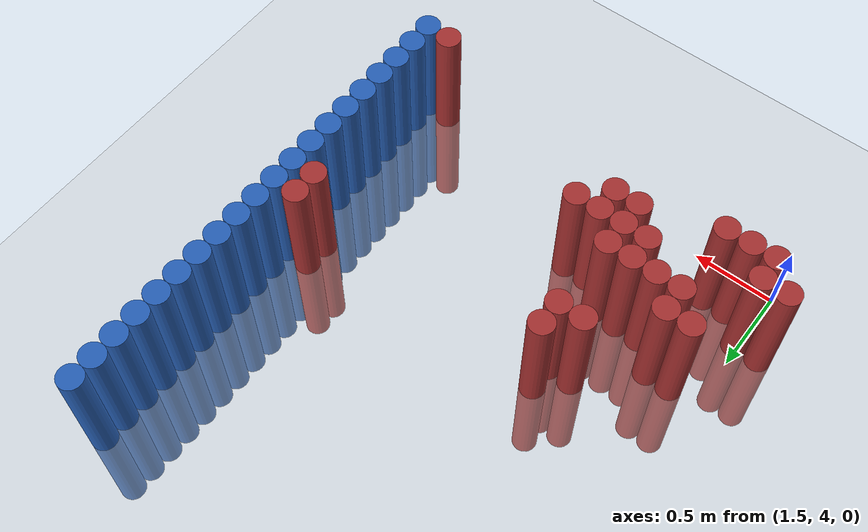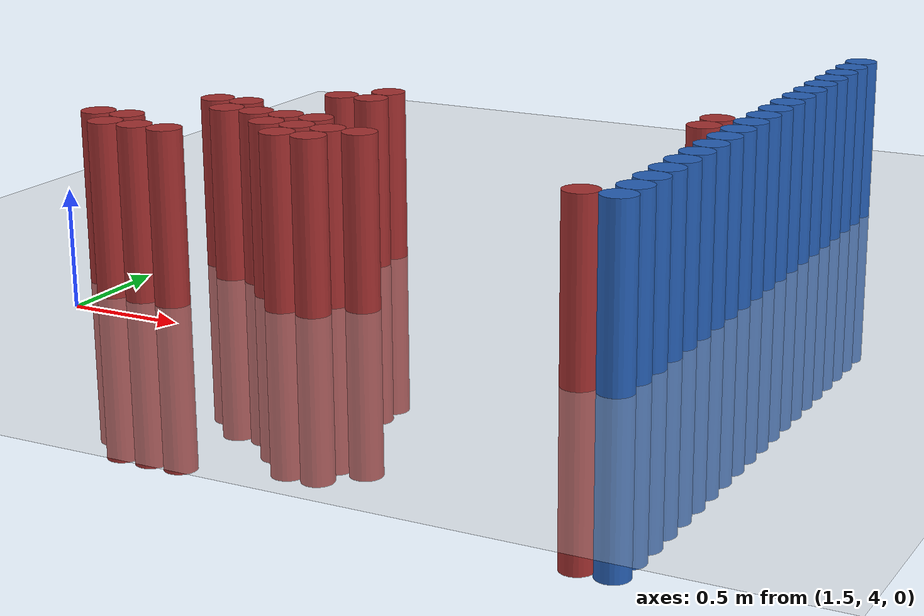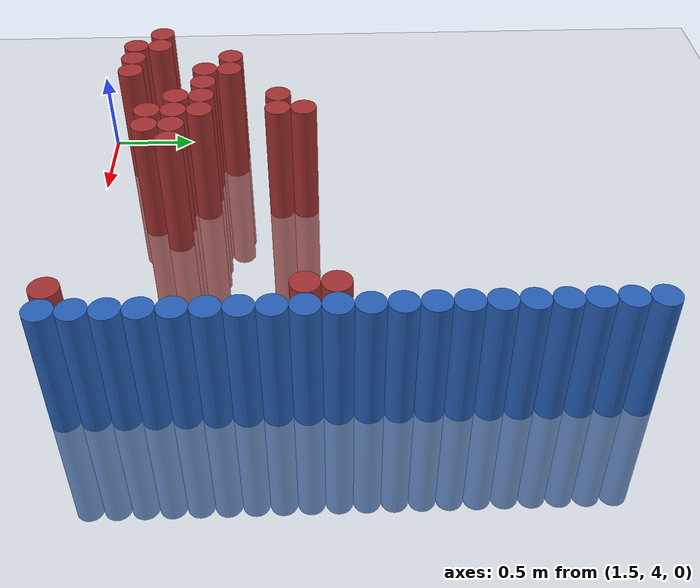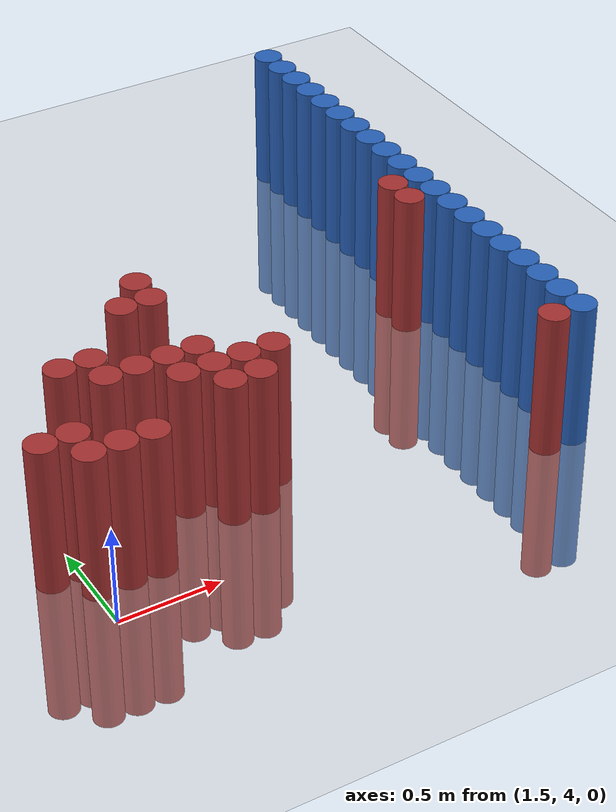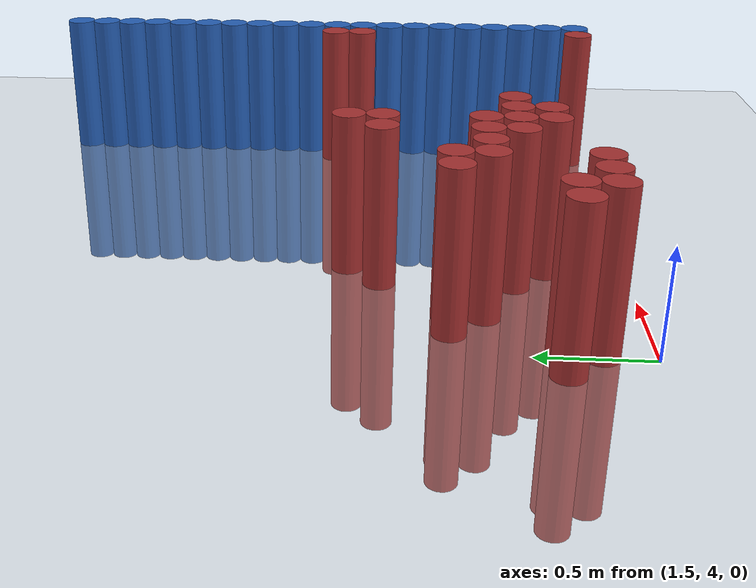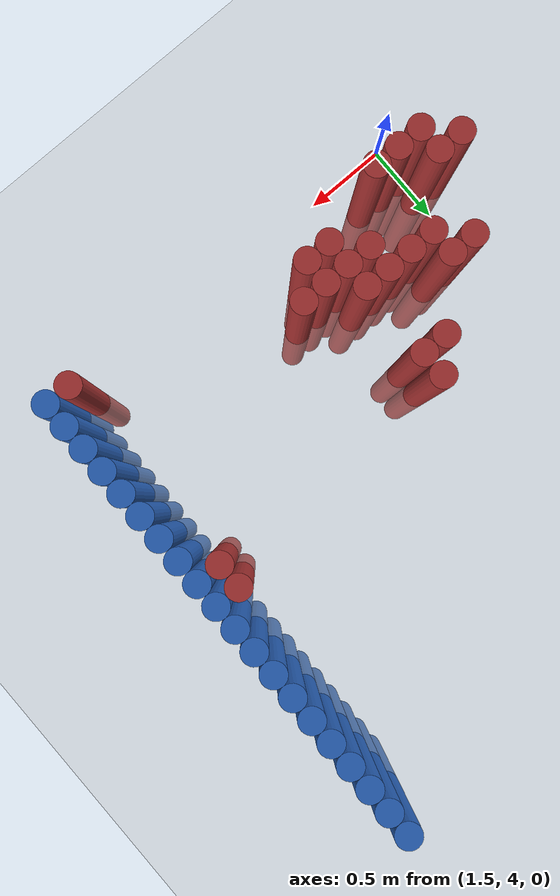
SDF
<sdf version="1.6">
 <world name="default">
  <model name="ground_plane">
   <static>1</static>
   <link name="link">
    <collision name="collision">
     <geometry><plane><normal>0 0 1</normal><size>100 100</size></plane></geometry>
     <surface><friction><ode><mu>100</mu><mu2>50</mu2></ode></friction></surface>
    </collision>
    <visual name="visual">
     <cast_shadows>0</cast_shadows>
     <geometry><plane><normal>0 0 1</normal><size>100 100</size></plane></geometry>
     <material>
      <script><uri>file://media/materials/scripts/gazebo.material</uri><name>Gazebo/Grey</name></script>
     </material>
    </visual>
   </link>
  </model>
  <model name="unit_cylinder_168">
   <static>1</static>
   <pose>3.925000 4.075000 0.000000 0.000000 0.000000 0.000000</pose>
   <link name="link">
    <inertial>
     <mass>1</mass>
     <inertia><ixx>0.145833</ixx><ixy>0</ixy><ixz>0</ixz><iyy>0.145833</iyy><iyz>0</iyz><izz>0.125</izz></inertia>
    </inertial>
    <collision name="collision">
     <geometry><cylinder><radius>0.075000</radius><length>1.5</length></cylinder></geometry>
    </collision>
    <visual name="visual">
     <geometry><cylinder><radius>0.075000</radius><length>1.5</length></cylinder></geometry>
     <material>
      <ambient>0.152000 0.379000 0.720000 1</ambient>
      <diffuse>0.152000 0.379000 0.720000 1</diffuse>
     </material>
     <material>
      <script><name>Gazebo/Grey</name><uri>file://media/materials/scripts/gazebo.material</uri></script>
     </material>
    </visual>
   </link>
  </model>
  <model name="unit_cylinder_170">
   <static>1</static>
   <pose>3.925000 4.225000 0.000000 0.000000 0.000000 0.000000</pose>
   <link name="link">
    <inertial>
     <mass>1</mass>
     <inertia><ixx>0.145833</ixx><ixy>0</ixy><ixz>0</ixz><iyy>0.145833</iyy><iyz>0</iyz><izz>0.125</izz></inertia>
    </inertial>
    <collision name="collision">
     <geometry><cylinder><radius>0.075000</radius><length>1.5</length></cylinder></geometry>
    </collision>
    <visual name="visual">
     <geometry><cylinder><radius>0.075000</radius><length>1.5</length></cylinder></geometry>
     <material>
      <ambient>0.152000 0.379000 0.720000 1</ambient>
      <diffuse>0.152000 0.379000 0.720000 1</diffuse>
     </material>
     <material>
      <script><name>Gazebo/Grey</name><uri>file://media/materials/scripts/gazebo.material</uri></script>
     </material>
    </visual>
   </link>
  </model>
  <model name="unit_cylinder_172">
   <static>1</static>
   <pose>3.925000 4.375000 0.000000 0.000000 0.000000 0.000000</pose>
   <link name="link">
    <inertial>
     <mass>1</mass>
     <inertia><ixx>0.145833</ixx><ixy>0</ixy><ixz>0</ixz><iyy>0.145833</iyy><iyz>0</iyz><izz>0.125</izz></inertia>
    </inertial>
    <collision name="collision">
     <geometry><cylinder><radius>0.075000</radius><length>1.5</length></cylinder></geometry>
    </collision>
    <visual name="visual">
     <geometry><cylinder><radius>0.075000</radius><length>1.5</length></cylinder></geometry>
     <material>
      <ambient>0.152000 0.379000 0.720000 1</ambient>
      <diffuse>0.152000 0.379000 0.720000 1</diffuse>
     </material>
     <material>
      <script><name>Gazebo/Grey</name><uri>file://media/materials/scripts/gazebo.material</uri></script>
     </material>
    </visual>
   </link>
  </model>
  <model name="unit_cylinder_174">
   <static>1</static>
   <pose>3.925000 4.525000 0.000000 0.000000 0.000000 0.000000</pose>
   <link name="link">
    <inertial>
     <mass>1</mass>
     <inertia><ixx>0.145833</ixx><ixy>0</ixy><ixz>0</ixz><iyy>0.145833</iyy><iyz>0</iyz><izz>0.125</izz></inertia>
    </inertial>
    <collision name="collision">
     <geometry><cylinder><radius>0.075000</radius><length>1.5</length></cylinder></geometry>
    </collision>
    <visual name="visual">
     <geometry><cylinder><radius>0.075000</radius><length>1.5</length></cylinder></geometry>
     <material>
      <ambient>0.152000 0.379000 0.720000 1</ambient>
      <diffuse>0.152000 0.379000 0.720000 1</diffuse>
     </material>
     <material>
      <script><name>Gazebo/Grey</name><uri>file://media/materials/scripts/gazebo.material</uri></script>
     </material>
    </visual>
   </link>
  </model>
  <model name="unit_cylinder_176">
   <static>1</static>
   <pose>3.925000 4.675000 0.000000 0.000000 0.000000 0.000000</pose>
   <link name="link">
    <inertial>
     <mass>1</mass>
     <inertia><ixx>0.145833</ixx><ixy>0</ixy><ixz>0</ixz><iyy>0.145833</iyy><iyz>0</iyz><izz>0.125</izz></inertia>
    </inertial>
    <collision name="collision">
     <geometry><cylinder><radius>0.075000</radius><length>1.5</length></cylinder></geometry>
    </collision>
    <visual name="visual">
     <geometry><cylinder><radius>0.075000</radius><length>1.5</length></cylinder></geometry>
     <material>
      <ambient>0.152000 0.379000 0.720000 1</ambient>
      <diffuse>0.152000 0.379000 0.720000 1</diffuse>
     </material>
     <material>
      <script><name>Gazebo/Grey</name><uri>file://media/materials/scripts/gazebo.material</uri></script>
     </material>
    </visual>
   </link>
  </model>
  <model name="unit_cylinder_178">
   <static>1</static>
   <pose>3.925000 4.825000 0.000000 0.000000 0.000000 0.000000</pose>
   <link name="link">
    <inertial>
     <mass>1</mass>
     <inertia><ixx>0.145833</ixx><ixy>0</ixy><ixz>0</ixz><iyy>0.145833</iyy><iyz>0</iyz><izz>0.125</izz></inertia>
    </inertial>
    <collision name="collision">
     <geometry><cylinder><radius>0.075000</radius><length>1.5</length></cylinder></geometry>
    </collision>
    <visual name="visual">
     <geometry><cylinder><radius>0.075000</radius><length>1.5</length></cylinder></geometry>
     <material>
      <ambient>0.152000 0.379000 0.720000 1</ambient>
      <diffuse>0.152000 0.379000 0.720000 1</diffuse>
     </material>
     <material>
      <script><name>Gazebo/Grey</name><uri>file://media/materials/scripts/gazebo.material</uri></script>
     </material>
    </visual>
   </link>
  </model>
  <model name="unit_cylinder_180">
   <static>1</static>
   <pose>3.925000 4.975000 0.000000 0.000000 0.000000 0.000000</pose>
   <link name="link">
    <inertial>
     <mass>1</mass>
     <inertia><ixx>0.145833</ixx><ixy>0</ixy><ixz>0</ixz><iyy>0.145833</iyy><iyz>0</iyz><izz>0.125</izz></inertia>
    </inertial>
    <collision name="collision">
     <geometry><cylinder><radius>0.075000</radius><length>1.5</length></cylinder></geometry>
    </collision>
    <visual name="visual">
     <geometry><cylinder><radius>0.075000</radius><length>1.5</length></cylinder></geometry>
     <material>
      <ambient>0.152000 0.379000 0.720000 1</ambient>
      <diffuse>0.152000 0.379000 0.720000 1</diffuse>
     </material>
     <material>
      <script><name>Gazebo/Grey</name><uri>file://media/materials/scripts/gazebo.material</uri></script>
     </material>
    </visual>
   </link>
  </model>
  <model name="unit_cylinder_182">
   <static>1</static>
   <pose>3.925000 5.125000 0.000000 0.000000 0.000000 0.000000</pose>
   <link name="link">
    <inertial>
     <mass>1</mass>
     <inertia><ixx>0.145833</ixx><ixy>0</ixy><ixz>0</ixz><iyy>0.145833</iyy><iyz>0</iyz><izz>0.125</izz></inertia>
    </inertial>
    <collision name="collision">
     <geometry><cylinder><radius>0.075000</radius><length>1.5</length></cylinder></geometry>
    </collision>
    <visual name="visual">
     <geometry><cylinder><radius>0.075000</radius><length>1.5</length></cylinder></geometry>
     <material>
      <ambient>0.152000 0.379000 0.720000 1</ambient>
      <diffuse>0.152000 0.379000 0.720000 1</diffuse>
     </material>
     <material>
      <script><name>Gazebo/Grey</name><uri>file://media/materials/scripts/gazebo.material</uri></script>
     </material>
    </visual>
   </link>
  </model>
  <model name="unit_cylinder_184">
   <static>1</static>
   <pose>3.925000 5.275000 0.000000 0.000000 0.000000 0.000000</pose>
   <link name="link">
    <inertial>
     <mass>1</mass>
     <inertia><ixx>0.145833</ixx><ixy>0</ixy><ixz>0</ixz><iyy>0.145833</iyy><iyz>0</iyz><izz>0.125</izz></inertia>
    </inertial>
    <collision name="collision">
     <geometry><cylinder><radius>0.075000</radius><length>1.5</length></cylinder></geometry>
    </collision>
    <visual name="visual">
     <geometry><cylinder><radius>0.075000</radius><length>1.5</length></cylinder></geometry>
     <material>
      <ambient>0.152000 0.379000 0.720000 1</ambient>
      <diffuse>0.152000 0.379000 0.720000 1</diffuse>
     </material>
     <material>
      <script><name>Gazebo/Grey</name><uri>file://media/materials/scripts/gazebo.material</uri></script>
     </material>
    </visual>
   </link>
  </model>
  <model name="unit_cylinder_186">
   <static>1</static>
   <pose>3.925000 5.425000 0.000000 0.000000 0.000000 0.000000</pose>
   <link name="link">
    <inertial>
     <mass>1</mass>
     <inertia><ixx>0.145833</ixx><ixy>0</ixy><ixz>0</ixz><iyy>0.145833</iyy><iyz>0</iyz><izz>0.125</izz></inertia>
    </inertial>
    <collision name="collision">
     <geometry><cylinder><radius>0.075000</radius><length>1.5</length></cylinder></geometry>
    </collision>
    <visual name="visual">
     <geometry><cylinder><radius>0.075000</radius><length>1.5</length></cylinder></geometry>
     <material>
      <ambient>0.152000 0.379000 0.720000 1</ambient>
      <diffuse>0.152000 0.379000 0.720000 1</diffuse>
     </material>
     <material>
      <script><name>Gazebo/Grey</name><uri>file://media/materials/scripts/gazebo.material</uri></script>
     </material>
    </visual>
   </link>
  </model>
  <model name="unit_cylinder_188">
   <static>1</static>
   <pose>3.925000 5.575000 0.000000 0.000000 0.000000 0.000000</pose>
   <link name="link">
    <inertial>
     <mass>1</mass>
     <inertia><ixx>0.145833</ixx><ixy>0</ixy><ixz>0</ixz><iyy>0.145833</iyy><iyz>0</iyz><izz>0.125</izz></inertia>
    </inertial>
    <collision name="collision">
     <geometry><cylinder><radius>0.075000</radius><length>1.5</length></cylinder></geometry>
    </collision>
    <visual name="visual">
     <geometry><cylinder><radius>0.075000</radius><length>1.5</length></cylinder></geometry>
     <material>
      <ambient>0.152000 0.379000 0.720000 1</ambient>
      <diffuse>0.152000 0.379000 0.720000 1</diffuse>
     </material>
     <material>
      <script><name>Gazebo/Grey</name><uri>file://media/materials/scripts/gazebo.material</uri></script>
     </material>
    </visual>
   </link>
  </model>
  <model name="unit_cylinder_190">
   <static>1</static>
   <pose>3.925000 5.725000 0.000000 0.000000 0.000000 0.000000</pose>
   <link name="link">
    <inertial>
     <mass>1</mass>
     <inertia><ixx>0.145833</ixx><ixy>0</ixy><ixz>0</ixz><iyy>0.145833</iyy><iyz>0</iyz><izz>0.125</izz></inertia>
    </inertial>
    <collision name="collision">
     <geometry><cylinder><radius>0.075000</radius><length>1.5</length></cylinder></geometry>
    </collision>
    <visual name="visual">
     <geometry><cylinder><radius>0.075000</radius><length>1.5</length></cylinder></geometry>
     <material>
      <ambient>0.152000 0.379000 0.720000 1</ambient>
      <diffuse>0.152000 0.379000 0.720000 1</diffuse>
     </material>
     <material>
      <script><name>Gazebo/Grey</name><uri>file://media/materials/scripts/gazebo.material</uri></script>
     </material>
    </visual>
   </link>
  </model>
  <model name="unit_cylinder_192">
   <static>1</static>
   <pose>3.925000 5.875000 0.000000 0.000000 0.000000 0.000000</pose>
   <link name="link">
    <inertial>
     <mass>1</mass>
     <inertia><ixx>0.145833</ixx><ixy>0</ixy><ixz>0</ixz><iyy>0.145833</iyy><iyz>0</iyz><izz>0.125</izz></inertia>
    </inertial>
    <collision name="collision">
     <geometry><cylinder><radius>0.075000</radius><length>1.5</length></cylinder></geometry>
    </collision>
    <visual name="visual">
     <geometry><cylinder><radius>0.075000</radius><length>1.5</length></cylinder></geometry>
     <material>
      <ambient>0.152000 0.379000 0.720000 1</ambient>
      <diffuse>0.152000 0.379000 0.720000 1</diffuse>
     </material>
     <material>
      <script><name>Gazebo/Grey</name><uri>file://media/materials/scripts/gazebo.material</uri></script>
     </material>
    </visual>
   </link>
  </model>
  <model name="unit_cylinder_194">
   <static>1</static>
   <pose>3.925000 6.025000 0.000000 0.000000 0.000000 0.000000</pose>
   <link name="link">
    <inertial>
     <mass>1</mass>
     <inertia><ixx>0.145833</ixx><ixy>0</ixy><ixz>0</ixz><iyy>0.145833</iyy><iyz>0</iyz><izz>0.125</izz></inertia>
    </inertial>
    <collision name="collision">
     <geometry><cylinder><radius>0.075000</radius><length>1.5</length></cylinder></geometry>
    </collision>
    <visual name="visual">
     <geometry><cylinder><radius>0.075000</radius><length>1.5</length></cylinder></geometry>
     <material>
      <ambient>0.152000 0.379000 0.720000 1</ambient>
      <diffuse>0.152000 0.379000 0.720000 1</diffuse>
     </material>
     <material>
      <script><name>Gazebo/Grey</name><uri>file://media/materials/scripts/gazebo.material</uri></script>
     </material>
    </visual>
   </link>
  </model>
  <model name="unit_cylinder_196">
   <static>1</static>
   <pose>3.925000 6.175000 0.000000 0.000000 0.000000 0.000000</pose>
   <link name="link">
    <inertial>
     <mass>1</mass>
     <inertia><ixx>0.145833</ixx><ixy>0</ixy><ixz>0</ixz><iyy>0.145833</iyy><iyz>0</iyz><izz>0.125</izz></inertia>
    </inertial>
    <collision name="collision">
     <geometry><cylinder><radius>0.075000</radius><length>1.5</length></cylinder></geometry>
    </collision>
    <visual name="visual">
     <geometry><cylinder><radius>0.075000</radius><length>1.5</length></cylinder></geometry>
     <material>
      <ambient>0.152000 0.379000 0.720000 1</ambient>
      <diffuse>0.152000 0.379000 0.720000 1</diffuse>
     </material>
     <material>
      <script><name>Gazebo/Grey</name><uri>file://media/materials/scripts/gazebo.material</uri></script>
     </material>
    </visual>
   </link>
  </model>
  <model name="unit_cylinder_198">
   <static>1</static>
   <pose>3.925000 6.325000 0.000000 0.000000 0.000000 0.000000</pose>
   <link name="link">
    <inertial>
     <mass>1</mass>
     <inertia><ixx>0.145833</ixx><ixy>0</ixy><ixz>0</ixz><iyy>0.145833</iyy><iyz>0</iyz><izz>0.125</izz></inertia>
    </inertial>
    <collision name="collision">
     <geometry><cylinder><radius>0.075000</radius><length>1.5</length></cylinder></geometry>
    </collision>
    <visual name="visual">
     <geometry><cylinder><radius>0.075000</radius><length>1.5</length></cylinder></geometry>
     <material>
      <ambient>0.152000 0.379000 0.720000 1</ambient>
      <diffuse>0.152000 0.379000 0.720000 1</diffuse>
     </material>
     <material>
      <script><name>Gazebo/Grey</name><uri>file://media/materials/scripts/gazebo.material</uri></script>
     </material>
    </visual>
   </link>
  </model>
  <model name="unit_cylinder_200">
   <static>1</static>
   <pose>3.925000 6.475000 0.000000 0.000000 0.000000 0.000000</pose>
   <link name="link">
    <inertial>
     <mass>1</mass>
     <inertia><ixx>0.145833</ixx><ixy>0</ixy><ixz>0</ixz><iyy>0.145833</iyy><iyz>0</iyz><izz>0.125</izz></inertia>
    </inertial>
    <collision name="collision">
     <geometry><cylinder><radius>0.075000</radius><length>1.5</length></cylinder></geometry>
    </collision>
    <visual name="visual">
     <geometry><cylinder><radius>0.075000</radius><length>1.5</length></cylinder></geometry>
     <material>
      <ambient>0.152000 0.379000 0.720000 1</ambient>
      <diffuse>0.152000 0.379000 0.720000 1</diffuse>
     </material>
     <material>
      <script><name>Gazebo/Grey</name><uri>file://media/materials/scripts/gazebo.material</uri></script>
     </material>
    </visual>
   </link>
  </model>
  <model name="unit_cylinder_202">
   <static>1</static>
   <pose>3.925000 6.625000 0.000000 0.000000 0.000000 0.000000</pose>
   <link name="link">
    <inertial>
     <mass>1</mass>
     <inertia><ixx>0.145833</ixx><ixy>0</ixy><ixz>0</ixz><iyy>0.145833</iyy><iyz>0</iyz><izz>0.125</izz></inertia>
    </inertial>
    <collision name="collision">
     <geometry><cylinder><radius>0.075000</radius><length>1.5</length></cylinder></geometry>
    </collision>
    <visual name="visual">
     <geometry><cylinder><radius>0.075000</radius><length>1.5</length></cylinder></geometry>
     <material>
      <ambient>0.152000 0.379000 0.720000 1</ambient>
      <diffuse>0.152000 0.379000 0.720000 1</diffuse>
     </material>
     <material>
      <script><name>Gazebo/Grey</name><uri>file://media/materials/scripts/gazebo.material</uri></script>
     </material>
    </visual>
   </link>
  </model>
  <model name="unit_cylinder_204">
   <static>1</static>
   <pose>3.925000 6.775000 0.000000 0.000000 0.000000 0.000000</pose>
   <link name="link">
    <inertial>
     <mass>1</mass>
     <inertia><ixx>0.145833</ixx><ixy>0</ixy><ixz>0</ixz><iyy>0.145833</iyy><iyz>0</iyz><izz>0.125</izz></inertia>
    </inertial>
    <collision name="collision">
     <geometry><cylinder><radius>0.075000</radius><length>1.5</length></cylinder></geometry>
    </collision>
    <visual name="visual">
     <geometry><cylinder><radius>0.075000</radius><length>1.5</length></cylinder></geometry>
     <material>
      <ambient>0.152000 0.379000 0.720000 1</ambient>
      <diffuse>0.152000 0.379000 0.720000 1</diffuse>
     </material>
     <material>
      <script><name>Gazebo/Grey</name><uri>file://media/materials/scripts/gazebo.material</uri></script>
     </material>
    </visual>
   </link>
  </model>
  <model name="unit_cylinder_206">
   <static>1</static>
   <pose>3.925000 6.925000 0.000000 0.000000 0.000000 0.000000</pose>
   <link name="link">
    <inertial>
     <mass>1</mass>
     <inertia><ixx>0.145833</ixx><ixy>0</ixy><ixz>0</ixz><iyy>0.145833</iyy><iyz>0</iyz><izz>0.125</izz></inertia>
    </inertial>
    <collision name="collision">
     <geometry><cylinder><radius>0.075000</radius><length>1.5</length></cylinder></geometry>
    </collision>
    <visual name="visual">
     <geometry><cylinder><radius>0.075000</radius><length>1.5</length></cylinder></geometry>
     <material>
      <ambient>0.152000 0.379000 0.720000 1</ambient>
      <diffuse>0.152000 0.379000 0.720000 1</diffuse>
     </material>
     <material>
      <script><name>Gazebo/Grey</name><uri>file://media/materials/scripts/gazebo.material</uri></script>
     </material>
    </visual>
   </link>
  </model>
  <model name="unit_cylinder_409">
   <static>1</static>
   <pose>1.375000 4.375000 0.000000 0.000000 0.000000 0.000000</pose>
   <link name="link">
    <inertial>
     <mass>1</mass>
     <inertia><ixx>0.145833</ixx><ixy>0</ixy><ixz>0</ixz><iyy>0.145833</iyy><iyz>0</iyz><izz>0.125</izz></inertia>
    </inertial>
    <collision name="collision">
     <geometry><cylinder><radius>0.075000</radius><length>1.5</length></cylinder></geometry>
    </collision>
    <visual name="visual">
     <geometry><cylinder><radius>0.075000</radius><length>1.5</length></cylinder></geometry>
     <material>
      <ambient>0.648000 0.192000 0.192000 1</ambient>
      <diffuse>0.648000 0.192000 0.192000 1</diffuse>
     </material>
     <material>
      <script><name>Gazebo/Grey</name><uri>file://media/materials/scripts/gazebo.material</uri></script>
     </material>
    </visual>
   </link>
  </model>
  <model name="unit_cylinder_415">
   <static>1</static>
   <pose>1.525000 4.225000 0.000000 0.000000 0.000000 0.000000</pose>
   <link name="link">
    <inertial>
     <mass>1</mass>
     <inertia><ixx>0.145833</ixx><ixy>0</ixy><ixz>0</ixz><iyy>0.145833</iyy><iyz>0</iyz><izz>0.125</izz></inertia>
    </inertial>
    <collision name="collision">
     <geometry><cylinder><radius>0.075000</radius><length>1.5</length></cylinder></geometry>
    </collision>
    <visual name="visual">
     <geometry><cylinder><radius>0.075000</radius><length>1.5</length></cylinder></geometry>
     <material>
      <ambient>0.648000 0.192000 0.192000 1</ambient>
      <diffuse>0.648000 0.192000 0.192000 1</diffuse>
     </material>
     <material>
      <script><name>Gazebo/Grey</name><uri>file://media/materials/scripts/gazebo.material</uri></script>
     </material>
    </visual>
   </link>
  </model>
  <model name="unit_cylinder_416">
   <static>1</static>
   <pose>1.525000 4.375000 0.000000 0.000000 0.000000 0.000000</pose>
   <link name="link">
    <inertial>
     <mass>1</mass>
     <inertia><ixx>0.145833</ixx><ixy>0</ixy><ixz>0</ixz><iyy>0.145833</iyy><iyz>0</iyz><izz>0.125</izz></inertia>
    </inertial>
    <collision name="collision">
     <geometry><cylinder><radius>0.075000</radius><length>1.5</length></cylinder></geometry>
    </collision>
    <visual name="visual">
     <geometry><cylinder><radius>0.075000</radius><length>1.5</length></cylinder></geometry>
     <material>
      <ambient>0.648000 0.192000 0.192000 1</ambient>
      <diffuse>0.648000 0.192000 0.192000 1</diffuse>
     </material>
     <material>
      <script><name>Gazebo/Grey</name><uri>file://media/materials/scripts/gazebo.material</uri></script>
     </material>
    </visual>
   </link>
  </model>
  <model name="unit_cylinder_428">
   <static>1</static>
   <pose>1.675000 4.225000 0.000000 0.000000 0.000000 0.000000</pose>
   <link name="link">
    <inertial>
     <mass>1</mass>
     <inertia><ixx>0.145833</ixx><ixy>0</ixy><ixz>0</ixz><iyy>0.145833</iyy><iyz>0</iyz><izz>0.125</izz></inertia>
    </inertial>
    <collision name="collision">
     <geometry><cylinder><radius>0.075000</radius><length>1.5</length></cylinder></geometry>
    </collision>
    <visual name="visual">
     <geometry><cylinder><radius>0.075000</radius><length>1.5</length></cylinder></geometry>
     <material>
      <ambient>0.648000 0.192000 0.192000 1</ambient>
      <diffuse>0.648000 0.192000 0.192000 1</diffuse>
     </material>
     <material>
      <script><name>Gazebo/Grey</name><uri>file://media/materials/scripts/gazebo.material</uri></script>
     </material>
    </visual>
   </link>
  </model>
  <model name="unit_cylinder_429">
   <static>1</static>
   <pose>1.675000 4.825000 0.000000 0.000000 0.000000 0.000000</pose>
   <link name="link">
    <inertial>
     <mass>1</mass>
     <inertia><ixx>0.145833</ixx><ixy>0</ixy><ixz>0</ixz><iyy>0.145833</iyy><iyz>0</iyz><izz>0.125</izz></inertia>
    </inertial>
    <collision name="collision">
     <geometry><cylinder><radius>0.075000</radius><length>1.5</length></cylinder></geometry>
    </collision>
    <visual name="visual">
     <geometry><cylinder><radius>0.075000</radius><length>1.5</length></cylinder></geometry>
     <material>
      <ambient>0.648000 0.192000 0.192000 1</ambient>
      <diffuse>0.648000 0.192000 0.192000 1</diffuse>
     </material>
     <material>
      <script><name>Gazebo/Grey</name><uri>file://media/materials/scripts/gazebo.material</uri></script>
     </material>
    </visual>
   </link>
  </model>
  <model name="unit_cylinder_442">
   <static>1</static>
   <pose>1.825000 4.225000 0.000000 0.000000 0.000000 0.000000</pose>
   <link name="link">
    <inertial>
     <mass>1</mass>
     <inertia><ixx>0.145833</ixx><ixy>0</ixy><ixz>0</ixz><iyy>0.145833</iyy><iyz>0</iyz><izz>0.125</izz></inertia>
    </inertial>
    <collision name="collision">
     <geometry><cylinder><radius>0.075000</radius><length>1.5</length></cylinder></geometry>
    </collision>
    <visual name="visual">
     <geometry><cylinder><radius>0.075000</radius><length>1.5</length></cylinder></geometry>
     <material>
      <ambient>0.648000 0.192000 0.192000 1</ambient>
      <diffuse>0.648000 0.192000 0.192000 1</diffuse>
     </material>
     <material>
      <script><name>Gazebo/Grey</name><uri>file://media/materials/scripts/gazebo.material</uri></script>
     </material>
    </visual>
   </link>
  </model>
  <model name="unit_cylinder_443">
   <static>1</static>
   <pose>1.825000 4.675000 0.000000 0.000000 0.000000 0.000000</pose>
   <link name="link">
    <inertial>
     <mass>1</mass>
     <inertia><ixx>0.145833</ixx><ixy>0</ixy><ixz>0</ixz><iyy>0.145833</iyy><iyz>0</iyz><izz>0.125</izz></inertia>
    </inertial>
    <collision name="collision">
     <geometry><cylinder><radius>0.075000</radius><length>1.5</length></cylinder></geometry>
    </collision>
    <visual name="visual">
     <geometry><cylinder><radius>0.075000</radius><length>1.5</length></cylinder></geometry>
     <material>
      <ambient>0.648000 0.192000 0.192000 1</ambient>
      <diffuse>0.648000 0.192000 0.192000 1</diffuse>
     </material>
     <material>
      <script><name>Gazebo/Grey</name><uri>file://media/materials/scripts/gazebo.material</uri></script>
     </material>
    </visual>
   </link>
  </model>
  <model name="unit_cylinder_444">
   <static>1</static>
   <pose>1.825000 4.825000 0.000000 0.000000 0.000000 0.000000</pose>
   <link name="link">
    <inertial>
     <mass>1</mass>
     <inertia><ixx>0.145833</ixx><ixy>0</ixy><ixz>0</ixz><iyy>0.145833</iyy><iyz>0</iyz><izz>0.125</izz></inertia>
    </inertial>
    <collision name="collision">
     <geometry><cylinder><radius>0.075000</radius><length>1.5</length></cylinder></geometry>
    </collision>
    <visual name="visual">
     <geometry><cylinder><radius>0.075000</radius><length>1.5</length></cylinder></geometry>
     <material>
      <ambient>0.648000 0.192000 0.192000 1</ambient>
      <diffuse>0.648000 0.192000 0.192000 1</diffuse>
     </material>
     <material>
      <script><name>Gazebo/Grey</name><uri>file://media/materials/scripts/gazebo.material</uri></script>
     </material>
    </visual>
   </link>
  </model>
  <model name="unit_cylinder_450">
   <static>1</static>
   <pose>1.975000 4.675000 0.000000 0.000000 0.000000 0.000000</pose>
   <link name="link">
    <inertial>
     <mass>1</mass>
     <inertia><ixx>0.145833</ixx><ixy>0</ixy><ixz>0</ixz><iyy>0.145833</iyy><iyz>0</iyz><izz>0.125</izz></inertia>
    </inertial>
    <collision name="collision">
     <geometry><cylinder><radius>0.075000</radius><length>1.5</length></cylinder></geometry>
    </collision>
    <visual name="visual">
     <geometry><cylinder><radius>0.075000</radius><length>1.5</length></cylinder></geometry>
     <material>
      <ambient>0.648000 0.192000 0.192000 1</ambient>
      <diffuse>0.648000 0.192000 0.192000 1</diffuse>
     </material>
     <material>
      <script><name>Gazebo/Grey</name><uri>file://media/materials/scripts/gazebo.material</uri></script>
     </material>
    </visual>
   </link>
  </model>
  <model name="unit_cylinder_457">
   <static>1</static>
   <pose>2.125000 4.525000 0.000000 0.000000 0.000000 0.000000</pose>
   <link name="link">
    <inertial>
     <mass>1</mass>
     <inertia><ixx>0.145833</ixx><ixy>0</ixy><ixz>0</ixz><iyy>0.145833</iyy><iyz>0</iyz><izz>0.125</izz></inertia>
    </inertial>
    <collision name="collision">
     <geometry><cylinder><radius>0.075000</radius><length>1.5</length></cylinder></geometry>
    </collision>
    <visual name="visual">
     <geometry><cylinder><radius>0.075000</radius><length>1.5</length></cylinder></geometry>
     <material>
      <ambient>0.648000 0.192000 0.192000 1</ambient>
      <diffuse>0.648000 0.192000 0.192000 1</diffuse>
     </material>
     <material>
      <script><name>Gazebo/Grey</name><uri>file://media/materials/scripts/gazebo.material</uri></script>
     </material>
    </visual>
   </link>
  </model>
  <model name="unit_cylinder_458">
   <static>1</static>
   <pose>2.125000 4.675000 0.000000 0.000000 0.000000 0.000000</pose>
   <link name="link">
    <inertial>
     <mass>1</mass>
     <inertia><ixx>0.145833</ixx><ixy>0</ixy><ixz>0</ixz><iyy>0.145833</iyy><iyz>0</iyz><izz>0.125</izz></inertia>
    </inertial>
    <collision name="collision">
     <geometry><cylinder><radius>0.075000</radius><length>1.5</length></cylinder></geometry>
    </collision>
    <visual name="visual">
     <geometry><cylinder><radius>0.075000</radius><length>1.5</length></cylinder></geometry>
     <material>
      <ambient>0.648000 0.192000 0.192000 1</ambient>
      <diffuse>0.648000 0.192000 0.192000 1</diffuse>
     </material>
     <material>
      <script><name>Gazebo/Grey</name><uri>file://media/materials/scripts/gazebo.material</uri></script>
     </material>
    </visual>
   </link>
  </model>
  <model name="unit_cylinder_459">
   <static>1</static>
   <pose>2.125000 5.125000 0.000000 0.000000 0.000000 0.000000</pose>
   <link name="link">
    <inertial>
     <mass>1</mass>
     <inertia><ixx>0.145833</ixx><ixy>0</ixy><ixz>0</ixz><iyy>0.145833</iyy><iyz>0</iyz><izz>0.125</izz></inertia>
    </inertial>
    <collision name="collision">
     <geometry><cylinder><radius>0.075000</radius><length>1.5</length></cylinder></geometry>
    </collision>
    <visual name="visual">
     <geometry><cylinder><radius>0.075000</radius><length>1.5</length></cylinder></geometry>
     <material>
      <ambient>0.648000 0.192000 0.192000 1</ambient>
      <diffuse>0.648000 0.192000 0.192000 1</diffuse>
     </material>
     <material>
      <script><name>Gazebo/Grey</name><uri>file://media/materials/scripts/gazebo.material</uri></script>
     </material>
    </visual>
   </link>
  </model>
  <model name="unit_cylinder_465">
   <static>1</static>
   <pose>2.275000 4.375000 0.000000 0.000000 0.000000 0.000000</pose>
   <link name="link">
    <inertial>
     <mass>1</mass>
     <inertia><ixx>0.145833</ixx><ixy>0</ixy><ixz>0</ixz><iyy>0.145833</iyy><iyz>0</iyz><izz>0.125</izz></inertia>
    </inertial>
    <collision name="collision">
     <geometry><cylinder><radius>0.075000</radius><length>1.5</length></cylinder></geometry>
    </collision>
    <visual name="visual">
     <geometry><cylinder><radius>0.075000</radius><length>1.5</length></cylinder></geometry>
     <material>
      <ambient>0.648000 0.192000 0.192000 1</ambient>
      <diffuse>0.648000 0.192000 0.192000 1</diffuse>
     </material>
     <material>
      <script><name>Gazebo/Grey</name><uri>file://media/materials/scripts/gazebo.material</uri></script>
     </material>
    </visual>
   </link>
  </model>
  <model name="unit_cylinder_466">
   <static>1</static>
   <pose>2.275000 4.525000 0.000000 0.000000 0.000000 0.000000</pose>
   <link name="link">
    <inertial>
     <mass>1</mass>
     <inertia><ixx>0.145833</ixx><ixy>0</ixy><ixz>0</ixz><iyy>0.145833</iyy><iyz>0</iyz><izz>0.125</izz></inertia>
    </inertial>
    <collision name="collision">
     <geometry><cylinder><radius>0.075000</radius><length>1.5</length></cylinder></geometry>
    </collision>
    <visual name="visual">
     <geometry><cylinder><radius>0.075000</radius><length>1.5</length></cylinder></geometry>
     <material>
      <ambient>0.648000 0.192000 0.192000 1</ambient>
      <diffuse>0.648000 0.192000 0.192000 1</diffuse>
     </material>
     <material>
      <script><name>Gazebo/Grey</name><uri>file://media/materials/scripts/gazebo.material</uri></script>
     </material>
    </visual>
   </link>
  </model>
  <model name="unit_cylinder_467">
   <static>1</static>
   <pose>2.275000 4.675000 0.000000 0.000000 0.000000 0.000000</pose>
   <link name="link">
    <inertial>
     <mass>1</mass>
     <inertia><ixx>0.145833</ixx><ixy>0</ixy><ixz>0</ixz><iyy>0.145833</iyy><iyz>0</iyz><izz>0.125</izz></inertia>
    </inertial>
    <collision name="collision">
     <geometry><cylinder><radius>0.075000</radius><length>1.5</length></cylinder></geometry>
    </collision>
    <visual name="visual">
     <geometry><cylinder><radius>0.075000</radius><length>1.5</length></cylinder></geometry>
     <material>
      <ambient>0.648000 0.192000 0.192000 1</ambient>
      <diffuse>0.648000 0.192000 0.192000 1</diffuse>
     </material>
     <material>
      <script><name>Gazebo/Grey</name><uri>file://media/materials/scripts/gazebo.material</uri></script>
     </material>
    </visual>
   </link>
  </model>
  <model name="unit_cylinder_468">
   <static>1</static>
   <pose>2.275000 5.125000 0.000000 0.000000 0.000000 0.000000</pose>
   <link name="link">
    <inertial>
     <mass>1</mass>
     <inertia><ixx>0.145833</ixx><ixy>0</ixy><ixz>0</ixz><iyy>0.145833</iyy><iyz>0</iyz><izz>0.125</izz></inertia>
    </inertial>
    <collision name="collision">
     <geometry><cylinder><radius>0.075000</radius><length>1.5</length></cylinder></geometry>
    </collision>
    <visual name="visual">
     <geometry><cylinder><radius>0.075000</radius><length>1.5</length></cylinder></geometry>
     <material>
      <ambient>0.648000 0.192000 0.192000 1</ambient>
      <diffuse>0.648000 0.192000 0.192000 1</diffuse>
     </material>
     <material>
      <script><name>Gazebo/Grey</name><uri>file://media/materials/scripts/gazebo.material</uri></script>
     </material>
    </visual>
   </link>
  </model>
  <model name="unit_cylinder_469">
   <static>1</static>
   <pose>2.275000 5.275000 0.000000 0.000000 0.000000 0.000000</pose>
   <link name="link">
    <inertial>
     <mass>1</mass>
     <inertia><ixx>0.145833</ixx><ixy>0</ixy><ixz>0</ixz><iyy>0.145833</iyy><iyz>0</iyz><izz>0.125</izz></inertia>
    </inertial>
    <collision name="collision">
     <geometry><cylinder><radius>0.075000</radius><length>1.5</length></cylinder></geometry>
    </collision>
    <visual name="visual">
     <geometry><cylinder><radius>0.075000</radius><length>1.5</length></cylinder></geometry>
     <material>
      <ambient>0.648000 0.192000 0.192000 1</ambient>
      <diffuse>0.648000 0.192000 0.192000 1</diffuse>
     </material>
     <material>
      <script><name>Gazebo/Grey</name><uri>file://media/materials/scripts/gazebo.material</uri></script>
     </material>
    </visual>
   </link>
  </model>
  <model name="unit_cylinder_472">
   <static>1</static>
   <pose>2.425000 4.375000 0.000000 0.000000 0.000000 0.000000</pose>
   <link name="link">
    <inertial>
     <mass>1</mass>
     <inertia><ixx>0.145833</ixx><ixy>0</ixy><ixz>0</ixz><iyy>0.145833</iyy><iyz>0</iyz><izz>0.125</izz></inertia>
    </inertial>
    <collision name="collision">
     <geometry><cylinder><radius>0.075000</radius><length>1.5</length></cylinder></geometry>
    </collision>
    <visual name="visual">
     <geometry><cylinder><radius>0.075000</radius><length>1.5</length></cylinder></geometry>
     <material>
      <ambient>0.648000 0.192000 0.192000 1</ambient>
      <diffuse>0.648000 0.192000 0.192000 1</diffuse>
     </material>
     <material>
      <script><name>Gazebo/Grey</name><uri>file://media/materials/scripts/gazebo.material</uri></script>
     </material>
    </visual>
   </link>
  </model>
  <model name="unit_cylinder_473">
   <static>1</static>
   <pose>2.425000 4.525000 0.000000 0.000000 0.000000 0.000000</pose>
   <link name="link">
    <inertial>
     <mass>1</mass>
     <inertia><ixx>0.145833</ixx><ixy>0</ixy><ixz>0</ixz><iyy>0.145833</iyy><iyz>0</iyz><izz>0.125</izz></inertia>
    </inertial>
    <collision name="collision">
     <geometry><cylinder><radius>0.075000</radius><length>1.5</length></cylinder></geometry>
    </collision>
    <visual name="visual">
     <geometry><cylinder><radius>0.075000</radius><length>1.5</length></cylinder></geometry>
     <material>
      <ambient>0.648000 0.192000 0.192000 1</ambient>
      <diffuse>0.648000 0.192000 0.192000 1</diffuse>
     </material>
     <material>
      <script><name>Gazebo/Grey</name><uri>file://media/materials/scripts/gazebo.material</uri></script>
     </material>
    </visual>
   </link>
  </model>
  <model name="unit_cylinder_477">
   <static>1</static>
   <pose>2.575000 4.525000 0.000000 0.000000 0.000000 0.000000</pose>
   <link name="link">
    <inertial>
     <mass>1</mass>
     <inertia><ixx>0.145833</ixx><ixy>0</ixy><ixz>0</ixz><iyy>0.145833</iyy><iyz>0</iyz><izz>0.125</izz></inertia>
    </inertial>
    <collision name="collision">
     <geometry><cylinder><radius>0.075000</radius><length>1.5</length></cylinder></geometry>
    </collision>
    <visual name="visual">
     <geometry><cylinder><radius>0.075000</radius><length>1.5</length></cylinder></geometry>
     <material>
      <ambient>0.648000 0.192000 0.192000 1</ambient>
      <diffuse>0.648000 0.192000 0.192000 1</diffuse>
     </material>
     <material>
      <script><name>Gazebo/Grey</name><uri>file://media/materials/scripts/gazebo.material</uri></script>
     </material>
    </visual>
   </link>
  </model>
  <model name="unit_cylinder_525">
   <static>1</static>
   <pose>3.775000 4.075000 0.000000 0.000000 0.000000 0.000000</pose>
   <link name="link">
    <inertial>
     <mass>1</mass>
     <inertia><ixx>0.145833</ixx><ixy>0</ixy><ixz>0</ixz><iyy>0.145833</iyy><iyz>0</iyz><izz>0.125</izz></inertia>
    </inertial>
    <collision name="collision">
     <geometry><cylinder><radius>0.075000</radius><length>1.5</length></cylinder></geometry>
    </collision>
    <visual name="visual">
     <geometry><cylinder><radius>0.075000</radius><length>1.5</length></cylinder></geometry>
     <material>
      <ambient>0.648000 0.192000 0.192000 1</ambient>
      <diffuse>0.648000 0.192000 0.192000 1</diffuse>
     </material>
     <material>
      <script><name>Gazebo/Grey</name><uri>file://media/materials/scripts/gazebo.material</uri></script>
     </material>
    </visual>
   </link>
  </model>
  <model name="unit_cylinder_526">
   <static>1</static>
   <pose>3.775000 5.275000 0.000000 0.000000 0.000000 0.000000</pose>
   <link name="link">
    <inertial>
     <mass>1</mass>
     <inertia><ixx>0.145833</ixx><ixy>0</ixy><ixz>0</ixz><iyy>0.145833</iyy><iyz>0</iyz><izz>0.125</izz></inertia>
    </inertial>
    <collision name="collision">
     <geometry><cylinder><radius>0.075000</radius><length>1.5</length></cylinder></geometry>
    </collision>
    <visual name="visual">
     <geometry><cylinder><radius>0.075000</radius><length>1.5</length></cylinder></geometry>
     <material>
      <ambient>0.648000 0.192000 0.192000 1</ambient>
      <diffuse>0.648000 0.192000 0.192000 1</diffuse>
     </material>
     <material>
      <script><name>Gazebo/Grey</name><uri>file://media/materials/scripts/gazebo.material</uri></script>
     </material>
    </visual>
   </link>
  </model>
  <model name="unit_cylinder_527">
   <static>1</static>
   <pose>3.775000 5.425000 0.000000 0.000000 0.000000 0.000000</pose>
   <link name="link">
    <inertial>
     <mass>1</mass>
     <inertia><ixx>0.145833</ixx><ixy>0</ixy><ixz>0</ixz><iyy>0.145833</iyy><iyz>0</iyz><izz>0.125</izz></inertia>
    </inertial>
    <collision name="collision">
     <geometry><cylinder><radius>0.075000</radius><length>1.5</length></cylinder></geometry>
    </collision>
    <visual name="visual">
     <geometry><cylinder><radius>0.075000</radius><length>1.5</length></cylinder></geometry>
     <material>
      <ambient>0.648000 0.192000 0.192000 1</ambient>
      <diffuse>0.648000 0.192000 0.192000 1</diffuse>
     </material>
     <material>
      <script><name>Gazebo/Grey</name><uri>file://media/materials/scripts/gazebo.material</uri></script>
     </material>
    </visual>
   </link>
  </model>
  <model name="unit_cylinder_568">
   <static>1</static>
   <pose>3.925000 4.075000 0.000000 0.000000 0.000000 0.000000</pose>
   <link name="link">
    <inertial>
     <mass>1</mass>
     <inertia><ixx>0.145833</ixx><ixy>0</ixy><ixz>0</ixz><iyy>0.145833</iyy><iyz>0</iyz><izz>0.125</izz></inertia>
    </inertial>
    <collision name="collision">
     <geometry><cylinder><radius>0.075000</radius><length>1.5</length></cylinder></geometry>
    </collision>
    <visual name="visual">
     <geometry><cylinder><radius>0.075000</radius><length>1.5</length></cylinder></geometry>
     <material>
      <ambient>0.152000 0.379000 0.720000 1</ambient>
      <diffuse>0.152000 0.379000 0.720000 1</diffuse>
     </material>
     <material>
      <script><name>Gazebo/Grey</name><uri>file://media/materials/scripts/gazebo.material</uri></script>
     </material>
    </visual>
   </link>
  </model>
  <model name="unit_cylinder_569">
   <static>1</static>
   <pose>3.925000 4.225000 0.000000 0.000000 0.000000 0.000000</pose>
   <link name="link">
    <inertial>
     <mass>1</mass>
     <inertia><ixx>0.145833</ixx><ixy>0</ixy><ixz>0</ixz><iyy>0.145833</iyy><iyz>0</iyz><izz>0.125</izz></inertia>
    </inertial>
    <collision name="collision">
     <geometry><cylinder><radius>0.075000</radius><length>1.5</length></cylinder></geometry>
    </collision>
    <visual name="visual">
     <geometry><cylinder><radius>0.075000</radius><length>1.5</length></cylinder></geometry>
     <material>
      <ambient>0.152000 0.379000 0.720000 1</ambient>
      <diffuse>0.152000 0.379000 0.720000 1</diffuse>
     </material>
     <material>
      <script><name>Gazebo/Grey</name><uri>file://media/materials/scripts/gazebo.material</uri></script>
     </material>
    </visual>
   </link>
  </model>
  <model name="unit_cylinder_570">
   <static>1</static>
   <pose>3.925000 4.375000 0.000000 0.000000 0.000000 0.000000</pose>
   <link name="link">
    <inertial>
     <mass>1</mass>
     <inertia><ixx>0.145833</ixx><ixy>0</ixy><ixz>0</ixz><iyy>0.145833</iyy><iyz>0</iyz><izz>0.125</izz></inertia>
    </inertial>
    <collision name="collision">
     <geometry><cylinder><radius>0.075000</radius><length>1.5</length></cylinder></geometry>
    </collision>
    <visual name="visual">
     <geometry><cylinder><radius>0.075000</radius><length>1.5</length></cylinder></geometry>
     <material>
      <ambient>0.152000 0.379000 0.720000 1</ambient>
      <diffuse>0.152000 0.379000 0.720000 1</diffuse>
     </material>
     <material>
      <script><name>Gazebo/Grey</name><uri>file://media/materials/scripts/gazebo.material</uri></script>
     </material>
    </visual>
   </link>
  </model>
  <model name="unit_cylinder_571">
   <static>1</static>
   <pose>3.925000 4.525000 0.000000 0.000000 0.000000 0.000000</pose>
   <link name="link">
    <inertial>
     <mass>1</mass>
     <inertia><ixx>0.145833</ixx><ixy>0</ixy><ixz>0</ixz><iyy>0.145833</iyy><iyz>0</iyz><izz>0.125</izz></inertia>
    </inertial>
    <collision name="collision">
     <geometry><cylinder><radius>0.075000</radius><length>1.5</length></cylinder></geometry>
    </collision>
    <visual name="visual">
     <geometry><cylinder><radius>0.075000</radius><length>1.5</length></cylinder></geometry>
     <material>
      <ambient>0.152000 0.379000 0.720000 1</ambient>
      <diffuse>0.152000 0.379000 0.720000 1</diffuse>
     </material>
     <material>
      <script><name>Gazebo/Grey</name><uri>file://media/materials/scripts/gazebo.material</uri></script>
     </material>
    </visual>
   </link>
  </model>
  <model name="unit_cylinder_572">
   <static>1</static>
   <pose>3.925000 4.675000 0.000000 0.000000 0.000000 0.000000</pose>
   <link name="link">
    <inertial>
     <mass>1</mass>
     <inertia><ixx>0.145833</ixx><ixy>0</ixy><ixz>0</ixz><iyy>0.145833</iyy><iyz>0</iyz><izz>0.125</izz></inertia>
    </inertial>
    <collision name="collision">
     <geometry><cylinder><radius>0.075000</radius><length>1.5</length></cylinder></geometry>
    </collision>
    <visual name="visual">
     <geometry><cylinder><radius>0.075000</radius><length>1.5</length></cylinder></geometry>
     <material>
      <ambient>0.152000 0.379000 0.720000 1</ambient>
      <diffuse>0.152000 0.379000 0.720000 1</diffuse>
     </material>
     <material>
      <script><name>Gazebo/Grey</name><uri>file://media/materials/scripts/gazebo.material</uri></script>
     </material>
    </visual>
   </link>
  </model>
  <model name="unit_cylinder_573">
   <static>1</static>
   <pose>3.925000 4.825000 0.000000 0.000000 0.000000 0.000000</pose>
   <link name="link">
    <inertial>
     <mass>1</mass>
     <inertia><ixx>0.145833</ixx><ixy>0</ixy><ixz>0</ixz><iyy>0.145833</iyy><iyz>0</iyz><izz>0.125</izz></inertia>
    </inertial>
    <collision name="collision">
     <geometry><cylinder><radius>0.075000</radius><length>1.5</length></cylinder></geometry>
    </collision>
    <visual name="visual">
     <geometry><cylinder><radius>0.075000</radius><length>1.5</length></cylinder></geometry>
     <material>
      <ambient>0.152000 0.379000 0.720000 1</ambient>
      <diffuse>0.152000 0.379000 0.720000 1</diffuse>
     </material>
     <material>
      <script><name>Gazebo/Grey</name><uri>file://media/materials/scripts/gazebo.material</uri></script>
     </material>
    </visual>
   </link>
  </model>
  <model name="unit_cylinder_574">
   <static>1</static>
   <pose>3.925000 4.975000 0.000000 0.000000 0.000000 0.000000</pose>
   <link name="link">
    <inertial>
     <mass>1</mass>
     <inertia><ixx>0.145833</ixx><ixy>0</ixy><ixz>0</ixz><iyy>0.145833</iyy><iyz>0</iyz><izz>0.125</izz></inertia>
    </inertial>
    <collision name="collision">
     <geometry><cylinder><radius>0.075000</radius><length>1.5</length></cylinder></geometry>
    </collision>
    <visual name="visual">
     <geometry><cylinder><radius>0.075000</radius><length>1.5</length></cylinder></geometry>
     <material>
      <ambient>0.152000 0.379000 0.720000 1</ambient>
      <diffuse>0.152000 0.379000 0.720000 1</diffuse>
     </material>
     <material>
      <script><name>Gazebo/Grey</name><uri>file://media/materials/scripts/gazebo.material</uri></script>
     </material>
    </visual>
   </link>
  </model>
  <model name="unit_cylinder_575">
   <static>1</static>
   <pose>3.925000 5.125000 0.000000 0.000000 0.000000 0.000000</pose>
   <link name="link">
    <inertial>
     <mass>1</mass>
     <inertia><ixx>0.145833</ixx><ixy>0</ixy><ixz>0</ixz><iyy>0.145833</iyy><iyz>0</iyz><izz>0.125</izz></inertia>
    </inertial>
    <collision name="collision">
     <geometry><cylinder><radius>0.075000</radius><length>1.5</length></cylinder></geometry>
    </collision>
    <visual name="visual">
     <geometry><cylinder><radius>0.075000</radius><length>1.5</length></cylinder></geometry>
     <material>
      <ambient>0.152000 0.379000 0.720000 1</ambient>
      <diffuse>0.152000 0.379000 0.720000 1</diffuse>
     </material>
     <material>
      <script><name>Gazebo/Grey</name><uri>file://media/materials/scripts/gazebo.material</uri></script>
     </material>
    </visual>
   </link>
  </model>
  <model name="unit_cylinder_576">
   <static>1</static>
   <pose>3.925000 5.275000 0.000000 0.000000 0.000000 0.000000</pose>
   <link name="link">
    <inertial>
     <mass>1</mass>
     <inertia><ixx>0.145833</ixx><ixy>0</ixy><ixz>0</ixz><iyy>0.145833</iyy><iyz>0</iyz><izz>0.125</izz></inertia>
    </inertial>
    <collision name="collision">
     <geometry><cylinder><radius>0.075000</radius><length>1.5</length></cylinder></geometry>
    </collision>
    <visual name="visual">
     <geometry><cylinder><radius>0.075000</radius><length>1.5</length></cylinder></geometry>
     <material>
      <ambient>0.152000 0.379000 0.720000 1</ambient>
      <diffuse>0.152000 0.379000 0.720000 1</diffuse>
     </material>
     <material>
      <script><name>Gazebo/Grey</name><uri>file://media/materials/scripts/gazebo.material</uri></script>
     </material>
    </visual>
   </link>
  </model>
  <model name="unit_cylinder_577">
   <static>1</static>
   <pose>3.925000 5.425000 0.000000 0.000000 0.000000 0.000000</pose>
   <link name="link">
    <inertial>
     <mass>1</mass>
     <inertia><ixx>0.145833</ixx><ixy>0</ixy><ixz>0</ixz><iyy>0.145833</iyy><iyz>0</iyz><izz>0.125</izz></inertia>
    </inertial>
    <collision name="collision">
     <geometry><cylinder><radius>0.075000</radius><length>1.5</length></cylinder></geometry>
    </collision>
    <visual name="visual">
     <geometry><cylinder><radius>0.075000</radius><length>1.5</length></cylinder></geometry>
     <material>
      <ambient>0.152000 0.379000 0.720000 1</ambient>
      <diffuse>0.152000 0.379000 0.720000 1</diffuse>
     </material>
     <material>
      <script><name>Gazebo/Grey</name><uri>file://media/materials/scripts/gazebo.material</uri></script>
     </material>
    </visual>
   </link>
  </model>
 </world>
</sdf>
